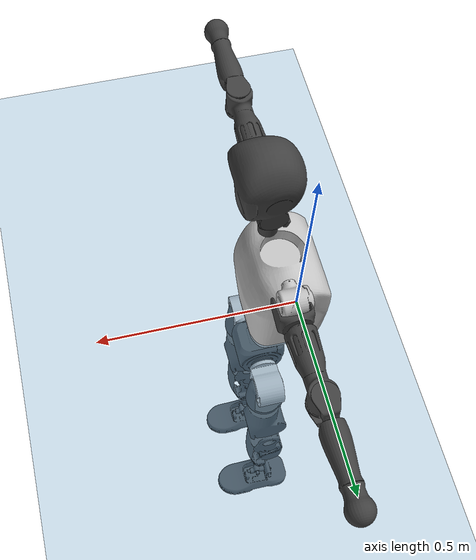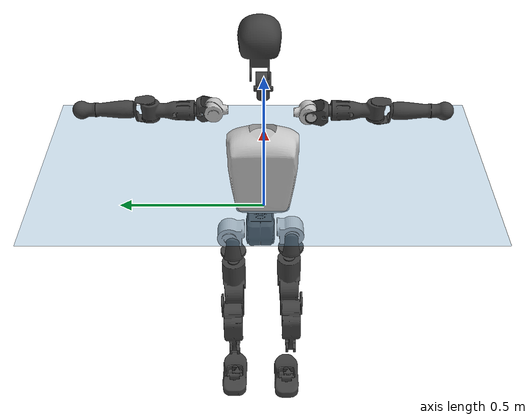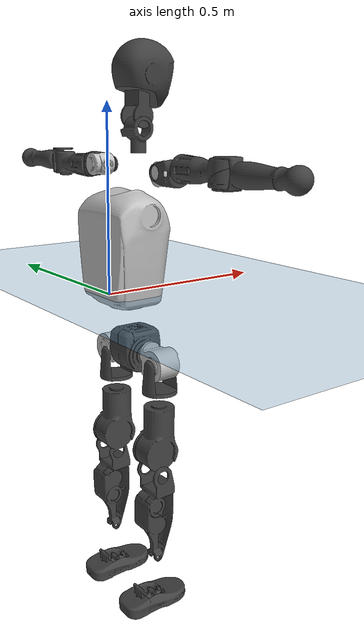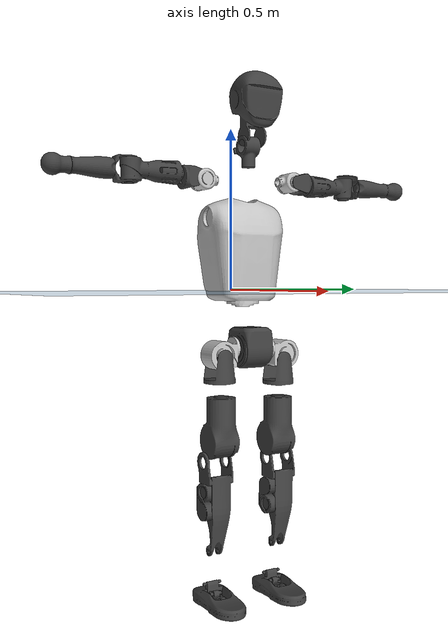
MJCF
<mujoco model="T1">
  <compiler angle="radian" assetdir="assets" balanceinertia="true" inertiafromgeom="false"/>

  <option timestep="0.005" density="1.2" viscosity="2e-05"/>

  <size nkey="1"/>

  <visual>
    <quality shadowsize="8192"/>
    <map shadowclip="0.5"/>
  </visual>

  <default>
    <default class="/">
      <joint armature="0.01" damping="0.01" frictionloss="0.1"/>
      <geom contype="0" conaffinity="0" group="1" solref="-1000 -80"/>
      <site size="0.01 0.005 0.005" group="5"/>
      <general forcelimited="true" biastype="affine" gainprm="25" biasprm="0 -25 -0.6"/>
      <default class="t1">
        <geom rgba="0.25 0.25 0.25 1"/>
        <default class="visual">
          <geom type="mesh" group="2"/>
        </default>
        <default class="collision">
          <geom group="3"/>
        </default>
        <default class="foot">
          <geom size="0.1115 0.05 0.015" type="box" condim="6" group="4" priority="1" solimp="0.015 1 0.015"/>
        </default>
        <default class="reward_collision_sphere">
          <geom group="5" rgba="1 0 0 1"/>
        </default>
      </default>
    </default>
  </default>

  <asset>
    <texture type="skybox" colorspace="auto" name="//unnamed_texture_0" builtin="gradient" rgb1="0.95 0.95 0.95" rgb2="0.95 0.95 0.95" width="100" height="600"/>
    <texture type="2d" colorspace="auto" name="texplane" builtin="checker" rgb1="0.345 0.575 0.748" rgb2="0.345 0.575 0.748" markrgb="1 1 1" width="512" height="512"/>
    <material name="MatPlane" class="/" texture="texplane" texuniform="true" texrepeat="2 2" specular="0.9"/>
    <mesh name="Trunk" class="/" file="Trunk.stl"/>
    <mesh name="H1" class="/" file="H1.stl"/>
    <mesh name="H2" class="/" file="H2.stl"/>
    <mesh name="AL1" class="/" file="AL1.stl"/>
    <mesh name="AL2" class="/" file="AL2.stl"/>
    <mesh name="AL3" class="/" file="AL3.stl"/>
    <mesh name="left_hand_link" class="/" file="left_hand_link.stl"/>
    <mesh name="AR1" class="/" file="AR1.stl"/>
    <mesh name="AR2" class="/" file="AR2.stl"/>
    <mesh name="AR3" class="/" file="AR3.stl"/>
    <mesh name="right_hand_link" class="/" file="right_hand_link.stl"/>
    <mesh name="Waist" class="/" file="Waist.stl"/>
    <mesh name="Hip_Pitch_Left" class="/" file="Hip_Pitch_Left.stl"/>
    <mesh name="Hip_Roll_Left" class="/" file="Hip_Roll_Left.stl"/>
    <mesh name="Hip_Yaw_Left" class="/" file="Hip_Yaw_Left.stl"/>
    <mesh name="Shank_Left" class="/" file="Shank_Left.stl"/>
    <mesh name="Ankle_Cross_Left" class="/" file="Ankle_Cross_Left.stl"/>
    <mesh name="left_foot_link" class="/" file="left_foot_link.stl"/>
    <mesh name="Hip_Pitch_Right" class="/" file="Hip_Pitch_Right.stl"/>
    <mesh name="Hip_Roll_Right" class="/" file="Hip_Roll_Right.stl"/>
    <mesh name="Hip_Yaw_Right" class="/" file="Hip_Yaw_Right.stl"/>
    <mesh name="Shank_Right" class="/" file="Shank_Right.stl"/>
    <mesh name="Ankle_Cross_Right" class="/" file="Ankle_Cross_Right.stl"/>
    <mesh name="right_foot_link" class="/" file="right_foot_link.stl"/>
  </asset>

  <worldbody>
    <geom name="floor" class="/" size="100 100 0.125" type="plane" group="0" material="MatPlane"/>
    <light name="toplight_shadow" class="/" pos="0 0 5" dir="0.0990148 0.0990148 -0.990148" type="directional" ambient="0.04 0.04 0.04" diffuse="0.55 0.55 0.55" specular="0.12 0.12 0.12"/>
    <light name="toplight_fill" class="/" pos="0 0 5" dir="0.0990148 0.0990148 -0.990148" type="directional" castshadow="false" ambient="0.04 0.04 0.04" diffuse="0.3 0.3 0.3" specular="0.08 0.08 0.08"/>
    <body name="trunk" childclass="t1" pos="-0.000551173 0.00409061 0.00150667" quat="0.999994 0.000646933 0.00045675 0.00333086">
      <inertial pos="0.0807152 0.00224536 0.154132" quat="0.999361 0.00992632 -0.0107311 -0.0326195" mass="27.881" diaginertia="0.463836 0.102854 0.354648"/>
      <joint name="//unnamed_joint_0" type="free" armature="0" damping="0" frictionloss="0"/>
      <geom name="//unnamed_geom_1" class="visual" rgba="0.76 0.76 0.76 1" mesh="Trunk"/>
      <geom name="//unnamed_geom_2" class="collision" size="0.100014 0.133352 0.200028" pos="0.0874101 0 0.177654" type="box"/>
      <geom name="//unnamed_geom_3" class="reward_collision_sphere" size="0.153355" pos="0.0874101 0 0.148045"/>
      <geom name="//unnamed_geom_4" class="reward_collision_sphere" size="0.0200028" pos="0.0874101 0.0903795 0"/>
      <geom name="//unnamed_geom_5" class="reward_collision_sphere" size="0.0200028" pos="0.0874101 -0.0903795 0"/>
      <geom name="//unnamed_geom_6" class="reward_collision_sphere" size="0.0200028" pos="0.0874101 0.113772 0.26648"/>
      <geom name="//unnamed_geom_7" class="reward_collision_sphere" size="0.0200028" pos="0.0874101 -0.113772 0.26648"/>
      <site name="imu" pos="-0.0324903 -0.00153847 0.0316998" size="0.0133352"/>
      <camera name="track" pos="0 -2.12658 0" quat="0.707107 0.707107 0 0" mode="trackcom"/>
      <camera name="ego_camera" pos="0.177734 0 0.621787" quat="-0.5 -0.5 0.5 0.5"/>
      <body name="H1" pos="0.0986058 -0.00151508 0.369603" quat="1 -0.00031647 0.000327376 3.14618e-05">
        <inertial pos="-0.00101038 -0.00311217 0.0848246" quat="0.768597 -0.0108089 -0.00155983 0.63964" mass="1.04262" diaginertia="0.00164804 0.000291868 0.00106351"/>
        <joint name="AAHead_yaw" pos="0 0 0" axis="-0.000535212 0.00169623 0.999998" range="-1.69932 1.6054" armature="0.00682746" damping="0.0148768" frictionloss="0.0720532"/>
        <geom name="//unnamed_geom_8" class="visual" mesh="H1"/>
        <body name="H2" pos="0.00308843 0.0118661 0.092464" quat="0.999999 0.000148705 0.00123039 0.000514943">
          <inertial pos="0.00367878 0.00937657 0.156923" quat="0.982392 0.139887 -0.0923816 -0.0824795" mass="1.46287" diaginertia="0.0137949 0.00303706 0.012708"/>
          <joint name="Head_pitch" pos="0 0 0" axis="0.0099837 -0.999949 -0.0012697" range="-1.20965 0.368844" armature="0.00975427" damping="0.054872" frictionloss="0.138412"/>
          <geom name="//unnamed_geom_9" class="visual" mesh="H2"/>
          <geom name="//unnamed_geom_10" class="collision" size="0.106682" pos="0.0145684 0 0.162849"/>
          <geom name="//unnamed_geom_11" class="reward_collision_sphere" size="0.120017" pos="0.0291367 0 0.148045"/>
        </body>
      </body>
      <body name="AL1" pos="0.0838679 0.115304 0.333961" quat="0.999987 0.00120656 -0.000127788 0.00501299">
        <inertial pos="0.00453537 0.0487803 -0.00123158" quat="0.504483 0.49596 -0.503173 0.496323" mass="1.33283" diaginertia="0.00950001 0.00209356 0.00242218"/>
        <joint name="Left_Shoulder_Pitch" pos="0 0 0" axis="-0.0263028 0.999449 0.0202266" stiffness="0.00234212" range="-3.21385 1.01342" armature="0.0131099" damping="0.0559957" frictionloss="0.104612"/>
        <geom name="//unnamed_geom_12" class="visual" rgba="0.76 0.76 0.76 1" mesh="AL1"/>
        <body name="AL2" pos="0.00919296 0.0476755 -0.00221265" quat="1 0.000286924 -0.000173504 0.000200672">
          <inertial pos="0.00881514 0.0307103 0.00388581" quat="0.486699 0.51249 -0.489249 0.510993" mass="0.34903" diaginertia="0.0025131 0.000436984 0.00124017"/>
          <joint name="Left_Shoulder_Roll" pos="0 0 0" axis="-0.999996 0.00282641 0.000628826" stiffness="0.0582335" range="-1.65041 1.7646" armature="0.00648436" damping="0.0196844" frictionloss="0.132956"/>
          <geom name="//unnamed_geom_13" class="visual" mesh="AL2"/>
          <body name="AL3" pos="-0.00184176 0.0636344 -0.0045903" quat="1 -0.000247833 -3.15701e-05 8.322e-05">
            <inertial pos="-0.00875026 0.100507 -0.00285314" quat="0.690233 0.723563 0.00468588 0.00353534" mass="2.95168" diaginertia="0.0828478 0.019343 0.00524042"/>
            <joint name="Left_Elbow_Pitch" pos="0 0 0" axis="0.0172023 -0.999827 -0.00705651" stiffness="0.0136988" range="-2.05893 2.32567" armature="0.00561673" damping="0.0154343" frictionloss="0.121234"/>
            <geom name="//unnamed_geom_14" class="visual" mesh="AL3"/>
            <geom name="//unnamed_geom_15" class="collision" size="0.0400057 0.100014" pos="0 0.0531644 0" quat="0.707105 0.707108 0 0" type="cylinder"/>
            <geom name="//unnamed_geom_16" class="reward_collision_sphere" size="0.0480068"/>
            <body name="left_hand_link" pos="0.000773181 0.156618 0.00569534" quat="0.999987 -0.00415669 0.00110451 0.00280294">
              <inertial pos="0.0105233 0.113517 -0.000165265" quat="0.708155 0.706045 -0.00355535 -0.00202944" mass="0.758971" diaginertia="0.0593607 0.0106182 0.00135398"/>
              <joint name="Left_Elbow_Yaw" pos="0 0 0" axis="0.00171381 0.00309073 0.999994" range="-2.4625 0.215836" armature="0.0128467" damping="0" frictionloss="0.144752"/>
              <geom name="//unnamed_geom_17" class="visual" mesh="left_hand_link"/>
              <geom name="//unnamed_geom_18" class="collision" size="0.0400057 0.116683" pos="0 0.138227 0" quat="0.707105 0.707108 0 0" type="cylinder"/>
              <geom name="//unnamed_geom_19" class="reward_collision_sphere" size="0.0666762"/>
              <geom name="//unnamed_geom_20" class="reward_collision_sphere" size="0.0466733" pos="0 0.116962 0"/>
              <geom name="//unnamed_geom_21" class="reward_collision_sphere" size="0.0466733" pos="0 0.228607 0"/>
            </body>
          </body>
        </body>
      </body>
      <body name="AR1" pos="0.0811896 -0.103715 0.325038" quat="0.999999 0.000347323 0.001312 -0.00098907">
        <inertial pos="0.00452401 -0.0361889 0.000855507" quat="0.505459 0.514067 -0.485676 0.494333" mass="1.35707" diaginertia="0.0103658 0.00189991 0.00221516"/>
        <joint name="Right_Shoulder_Pitch" pos="0 0 0" axis="-0.0155131 -0.999118 0.0390208" stiffness="0.0568497" range="-1.20087 3.39625" armature="0.00765875" damping="0.0194785" frictionloss="0.158215"/>
        <geom name="//unnamed_geom_22" class="visual" rgba="0.76 0.76 0.76 1" mesh="AR1"/>
        <body name="AR2" pos="-0.0107694 -0.0556274 0.00495191" quat="0.999989 0.00204045 -0.00409696 -0.000691525">
          <inertial pos="0.0112657 -0.0381769 0.0024683" quat="0.507642 0.476255 -0.517574 0.497592" mass="0.421315" diaginertia="0.0026041 0.000412487 0.00125745"/>
          <joint name="Right_Shoulder_Roll" pos="0 0 0" axis="-0.999989 -0.00166067 0.00432582" range="-1.78768 1.53115" armature="0.0145263" damping="0" frictionloss="0.0555399"/>
          <geom name="//unnamed_geom_23" class="visual" mesh="AR2"/>
          <body name="AR3" pos="-0.00511339 -0.0666207 0.0119272" quat="1 4.91329e-05 -3.2384e-05 3.51367e-05">
            <inertial pos="0.00183162 -0.0813992 0.00310262" quat="0.720028 0.69286 0.022633 0.0314917" mass="2.46613" diaginertia="0.0863027 0.0178103 0.00399801"/>
            <joint name="Right_Elbow_Pitch" pos="0 0 0" axis="0.0438837 0.999032 0.00292034" range="-2.09403 2.36941" armature="0.0200164" damping="0.013902" frictionloss="0.0951579"/>
            <geom name="//unnamed_geom_24" class="visual" mesh="AR3"/>
            <geom name="//unnamed_geom_25" class="collision" size="0.0400057 0.100014" pos="0 -0.0531644 0" quat="0.707105 0.707108 0 0" type="cylinder"/>
            <geom name="//unnamed_geom_26" class="reward_collision_sphere" size="0.0480068"/>
            <body name="right_hand_link" pos="0.000427093 -0.157261 -0.00117797" quat="0.999992 -0.00199854 -0.00249718 -0.00223451">
              <inertial pos="0.00164324 -0.112819 -0.00860465" quat="0.705189 0.709018 -0.000271578 -0.00113109" mass="0.810631" diaginertia="0.0553189 0.011797 0.00160928"/>
              <joint name="Right_Elbow_Yaw" pos="0 0 0" axis="0.0206131 -0.0176201 0.999632" range="-0.0296401 2.32358" armature="0.00709928" damping="0.0650597" frictionloss="0.0885377"/>
              <geom name="//unnamed_geom_27" class="visual" mesh="right_hand_link"/>
              <geom name="//unnamed_geom_28" class="collision" size="0.0400057 0.116683" pos="0 -0.138227 0" quat="0.707105 0.707108 0 0" type="cylinder"/>
              <geom name="//unnamed_geom_29" class="reward_collision_sphere" size="0.0666762"/>
              <geom name="//unnamed_geom_30" class="reward_collision_sphere" size="0.0466733" pos="0 -0.116962 0"/>
              <geom name="//unnamed_geom_31" class="reward_collision_sphere" size="0.0466733" pos="0 -0.228607 0"/>
            </body>
          </body>
        </body>
      </body>
      <body name="Waist" pos="0.094517 0.00796569 -0.18167" quat="1 -8.46371e-05 -3.08005e-05 -0.000282127">
        <inertial pos="0.0125024 0.000285775 0.0111991" quat="0.987899 -0.0232157 -0.151909 -0.0209835" mass="6.96085" diaginertia="0.0405901 0.00809243 0.0379948"/>
        <joint name="Waist" pos="0 0 0" axis="0.0259767 -0.0360176 0.999013" stiffness="0.0227359" range="-1.57209 1.75315" armature="0.0146011" damping="0" frictionloss="0.0764057"/>
        <geom name="//unnamed_geom_32" class="visual" mesh="Waist"/>
        <body name="Hip_Pitch_Left" pos="0.0019615 0.114784 0.000436464" quat="0.999998 9.33812e-05 -0.00194438 0.000512307">
          <inertial pos="0.000316675 -0.00414896 -0.0283158" quat="0.975263 0.220666 0.0129507 -0.000107522" mass="2.35511" diaginertia="0.0118164 0.00177757 0.00870457"/>
          <joint name="Left_Hip_Pitch" pos="0 0 0" axis="-0.0256083 0.998225 0.0537716" stiffness="0.0516706" range="-1.78568 1.36226" armature="0.0106349" damping="0.0483063" frictionloss="0.121659"/>
          <geom name="//unnamed_geom_33" class="visual" rgba="0.76 0.76 0.76 1" mesh="Hip_Pitch_Left"/>
          <body name="Hip_Roll_Left" pos="0.00175466 -0.0120052 -0.0378622" quat="0.999983 -0.00525797 -0.00183435 -0.00149119">
            <inertial pos="0.00927475 0.001616 -0.0795347" quat="0.711347 -0.0114226 -0.0093827 0.702685" mass="1.04108" diaginertia="0.0114883 0.00239226 0.00414514"/>
            <joint name="Left_Hip_Roll" pos="0 0 0" axis="-0.998669 0.0459846 0.0233456" range="-1.62945 0.161228" armature="0.0158712" damping="0" frictionloss="0.133714"/>
            <geom name="//unnamed_geom_34" class="visual" mesh="Hip_Roll_Left"/>
            <geom name="//unnamed_geom_35" class="reward_collision_sphere" size="0.0733438"/>
            <body name="Hip_Yaw_Left" pos="-0.00268905 0.000606757 -0.118143" quat="1 -9.69031e-05 -3.81311e-05 7.26453e-05">
              <inertial pos="-0.00919451 -0.00102684 -0.13277" quat="0.711268 0.00935319 -0.0487031 0.701169" mass="5.96053" diaginertia="0.170432 0.0381418 0.0206277"/>
              <joint name="Left_Hip_Yaw" pos="0 0 0" axis="-0.00859988 0.000746501 -0.999963" range="-0.867977 1.03866" armature="0.0134559" damping="0" frictionloss="0.141713"/>
              <geom name="//unnamed_geom_36" class="visual" mesh="Hip_Yaw_Left"/>
              <geom name="//unnamed_geom_37" class="collision" size="0.0666762 0.106682" type="cylinder"/>
              <body name="Shank_Left" pos="-0.0182298 0.00923163 -0.195743" quat="0.999999 -0.000865187 -0.000508886 -0.00023671">
                <inertial pos="-0.00606915 0.00745993 -0.185545" quat="0.995648 0.0136685 0.00264667 0.0921443" mass="3.6179" diaginertia="0.212213 0.0429693 0.0138454"/>
                <joint name="Left_Knee_Pitch" pos="0 0 0" axis="0.00929241 0.999929 -0.00744572" range="-0.0504608 2.42079" armature="0.0076417" damping="0.0396204" frictionloss="0.138293"/>
                <geom name="//unnamed_geom_38" class="visual" mesh="Shank_Left"/>
                <geom name="//unnamed_geom_39" class="collision" size="0.0666762 0.100014" pos="0 0 -0.177654" type="cylinder"/>
                <geom name="//unnamed_geom_40" class="reward_collision_sphere" size="0.086679"/>
                <body name="Ankle_Cross_Left" pos="0.000197438 -0.00654158 -0.406522" quat="0.999989 -0.000184322 -0.00456842 -0.000559684">
                  <inertial pos="-0.00171365 0.010946 -0.0125161" quat="0.459253 0.560018 0.551906 0.41336" mass="0.168973" diaginertia="0.000182211 3.05174e-05 7.26303e-05"/>
                  <joint name="Left_Ankle_Pitch" pos="0 0 0" axis="0.023323 0.999599 -0.0160564" stiffness="0.00181422" range="-0.87679 0.315636" armature="0.014583" damping="0" frictionloss="0.141858"/>
                  <geom name="//unnamed_geom_41" class="visual" mesh="Ankle_Cross_Left"/>
                  <body name="left_foot_link" pos="0.00806438 0.0106393 -0.0156176" quat="0.999999 -0.00033691 -0.000715799 -0.000614121">
                    <inertial pos="-0.00914566 -0.00166285 -0.024868" quat="0.00384122 0.621802 0.000223679 0.783165" mass="1.66594" diaginertia="0.0179387 0.00327928 0.0161963"/>
                    <joint name="Left_Ankle_Roll" pos="0 0 0" axis="-0.999964 0.00827012 -0.00172229" range="-0.479629 0.435123" armature="0.0197719" damping="0.0316152" frictionloss="0.122062"/>
                    <geom name="//unnamed_geom_42" class="visual" mesh="left_foot_link"/>
                    <geom name="left_foot" class="foot" size="0.110643 0.085601 0.0194151" pos="0.0145684 0 -0.0222067"/>
                    <geom name="//unnamed_geom_44" class="reward_collision_sphere" size="0.0693432" pos="0.0145684 0 -0.0222067"/>
                    <geom name="//unnamed_geom_45" class="reward_collision_sphere" size="0.0400057" pos="0.138399 -0.0244556 -0.0222067"/>
                    <geom name="//unnamed_geom_46" class="reward_collision_sphere" size="0.0400057" pos="-0.101978 -0.0244556 -0.0222067"/>
                    <site name="left_foot" class="foot" pos="0.0145684 0 -0.0222067" size="0.0133352"/>
                  </body>
                </body>
              </body>
            </body>
          </body>
        </body>
        <body name="Hip_Pitch_Right" pos="0.00741906 -0.116591 0.00572899" quat="0.999984 -0.00308519 -0.00333895 0.0033481">
          <inertial pos="0.000650842 0.020054 -0.0264777" quat="0.972401 -0.232969 -0.00439163 0.0119459" mass="2.53597" diaginertia="0.0132636 0.00227947 0.0102248"/>
          <joint name="Right_Hip_Pitch" pos="0 0 0" axis="0.000596534 -1 0.000272786" stiffness="0.00941773" range="-1.43533 1.80446" armature="0.0159113" damping="0.0204202" frictionloss="0.0631314"/>
          <geom name="//unnamed_geom_47" class="visual" rgba="0.76 0.76 0.76 1" mesh="Hip_Pitch_Right"/>
          <body name="Hip_Roll_Right" pos="4.35752e-05 0.0025291 -0.0270172" quat="1 -0.000138508 0.000790789 0.000536185">
            <inertial pos="0.0110681 -0.0113181 -0.0688185" quat="0.703831 -0.0220653 -0.00771981 0.709983" mass="0.867317" diaginertia="0.0106562 0.00201948 0.00359617"/>
            <joint name="Right_Hip_Roll" pos="0 0 0" axis="-0.999998 0.000797863 0.00159353" range="-0.21788 1.54819" armature="0.01095" damping="0.0101743" frictionloss="0.139027"/>
            <geom name="//unnamed_geom_48" class="visual" mesh="Hip_Roll_Right"/>
            <geom name="//unnamed_geom_49" class="reward_collision_sphere" size="0.0733438"/>
            <body name="Hip_Yaw_Right" pos="-0.000544704 0.00572463 -0.121809" quat="0.999998 0.000562891 0.0013944 0.000951946">
              <inertial pos="-0.0159676 0.00566897 -0.132661" quat="0.713828 -0.0334202 -0.0327923 0.698754" mass="5.33063" diaginertia="0.157649 0.0348004 0.0178673"/>
              <joint name="Right_Hip_Yaw" pos="0 0 0" axis="-0.00013181 1.85682e-05 -1" range="-1.00941 1.16417" armature="0.0210916" damping="0" frictionloss="0.0677361"/>
              <geom name="//unnamed_geom_50" class="visual" mesh="Hip_Yaw_Right"/>
              <geom name="//unnamed_geom_51" class="collision" size="0.0666762 0.106682" type="cylinder"/>
              <body name="Shank_Right" pos="-0.0227053 -0.0101745 -0.198964" quat="0.999989 -0.00346952 -0.00245157 -0.00182553">
                <inertial pos="-0.00756361 -0.00742906 -0.192156" quat="0.998383 -0.0295557 -0.0393977 -0.0283934" mass="4.66231" diaginertia="0.246427 0.0468095 0.0119626"/>
                <joint name="Right_Knee_Pitch" pos="0 0 0" axis="-0.0403 -0.999077 0.0148736" range="-2.50614 0.158183" armature="0.0131948" damping="0" frictionloss="0.1502"/>
                <geom name="//unnamed_geom_52" class="visual" mesh="Shank_Right"/>
                <geom name="//unnamed_geom_53" class="collision" size="0.0666762 0.100014" pos="0 0 -0.177654" type="cylinder"/>
                <geom name="//unnamed_geom_54" class="reward_collision_sphere" size="0.086679"/>
                <body name="Ankle_Cross_Right" pos="-0.00435701 0.00830187 -0.416997" quat="0.999982 -0.000158558 0.00180045 -0.00573214">
                  <inertial pos="-0.0029878 0.00226837 -0.0190691" quat="0.42322 0.559575 0.554896 0.447047" mass="0.177543" diaginertia="0.000188703 3.48681e-05 8.92364e-05"/>
                  <joint name="Right_Ankle_Pitch" pos="0 0 0" axis="0.00774543 -0.999942 0.00751546" range="-0.185028 0.890992" armature="0.0144219" damping="0.000105659" frictionloss="0.129108"/>
                  <geom name="//unnamed_geom_55" class="visual" mesh="Ankle_Cross_Right"/>
                  <body name="right_foot_link" pos="0.00179856 0.00883253 -0.0139513" quat="1 0.000155643 0.000105902 -8.29823e-05">
                    <inertial pos="-0.00215282 -0.0021036 -0.00549236" quat="-0.0025092 0.618572 0.00149383 0.785723" mass="1.65726" diaginertia="0.0179267 0.00321189 0.0166778"/>
                    <joint name="Right_Ankle_Roll" pos="0 0 0" axis="-0.999484 0.0130793 0.0293274" stiffness="0.0269666" range="-0.679869 0.432836" armature="0.00748171" damping="0.0107619" frictionloss="0.176363"/>
                    <geom name="//unnamed_geom_56" class="visual" mesh="right_foot_link"/>
                    <geom name="right_foot" class="foot" size="0.129432 0.0836875 0.0188364" pos="0.0145684 0 -0.0222067"/>
                    <geom name="//unnamed_geom_58" class="reward_collision_sphere" size="0.0533409"/>
                    <geom name="//unnamed_geom_59" class="reward_collision_sphere" size="0.0400057" pos="0.0145684 0 -0.0222067"/>
                    <geom name="//unnamed_geom_60" class="reward_collision_sphere" size="0.0400057" pos="0.138399 0.0244556 -0.0222067"/>
                    <geom name="//unnamed_geom_61" class="reward_collision_sphere" size="0.0400057" pos="-0.101978 0.0244556 -0.0222067"/>
                    <site name="right_foot" class="foot" pos="0.0145684 0 -0.0222067" size="0.0133352"/>
                  </body>
                </body>
              </body>
            </body>
          </body>
        </body>
      </body>
    </body>
  </worldbody>

  <contact>
    <pair class="/" geom1="floor" geom2="left_foot" name="//unnamed_contact_0"/>
    <pair class="/" geom1="floor" geom2="right_foot" name="//unnamed_contact_1"/>
  </contact>

  <actuator>
    <general name="AAHead_yaw" class="/" joint="AAHead_yaw" forcerange="-11.1004 11.1004" gainprm="37.2777" biasprm="0 -37.2777 -0.841237"/>
    <general name="Head_pitch" class="/" joint="Head_pitch" forcerange="-7.17284 7.17284" gainprm="37.2777" biasprm="0 -37.2777 -0.841237"/>
    <general name="Left_Shoulder_Pitch" class="/" joint="Left_Shoulder_Pitch" forcerange="-23.3641 23.3641" gainprm="37.2777" biasprm="0 -37.2777 -0.841237"/>
    <general name="Left_Shoulder_Roll" class="/" joint="Left_Shoulder_Roll" forcerange="-16.2131 16.2131" gainprm="37.2777" biasprm="0 -37.2777 -0.841237"/>
    <general name="Left_Elbow_Pitch" class="/" joint="Left_Elbow_Pitch" forcerange="-23.2838 23.2838" gainprm="37.2777" biasprm="0 -37.2777 -0.841237"/>
    <general name="Left_Elbow_Yaw" class="/" joint="Left_Elbow_Yaw" forcerange="-26.6849 26.6849" gainprm="37.2777" biasprm="0 -37.2777 -0.841237"/>
    <general name="Right_Shoulder_Pitch" class="/" joint="Right_Shoulder_Pitch" forcerange="-24.945 24.945" gainprm="37.2777" biasprm="0 -37.2777 -0.841237"/>
    <general name="Right_Shoulder_Roll" class="/" joint="Right_Shoulder_Roll" forcerange="-26.0988 26.0988" gainprm="37.2777" biasprm="0 -37.2777 -0.841237"/>
    <general name="Right_Elbow_Pitch" class="/" joint="Right_Elbow_Pitch" forcerange="-23.9214 23.9214" gainprm="37.2777" biasprm="0 -37.2777 -0.841237"/>
    <general name="Right_Elbow_Yaw" class="/" joint="Right_Elbow_Yaw" forcerange="-24.2719 24.2719" gainprm="37.2777" biasprm="0 -37.2777 -0.841237"/>
    <general name="Waist" class="/" joint="Waist" forcerange="-53.136 53.136" gainprm="37.2777" biasprm="0 -37.2777 -0.841237"/>
    <general name="Left_Hip_Pitch" class="/" joint="Left_Hip_Pitch" forcerange="-64.2282 64.2282" gainprm="37.2777" biasprm="0 -37.2777 -0.841237"/>
    <general name="Left_Hip_Roll" class="/" joint="Left_Hip_Roll" forcerange="-37.3189 37.3189" gainprm="37.2777" biasprm="0 -37.2777 -0.841237"/>
    <general name="Left_Hip_Yaw" class="/" joint="Left_Hip_Yaw" forcerange="-40.3521 40.3521" gainprm="37.2777" biasprm="0 -37.2777 -0.841237"/>
    <general name="Left_Knee_Pitch" class="/" joint="Left_Knee_Pitch" forcerange="-103.554 103.554" gainprm="37.2777" biasprm="0 -37.2777 -0.841237"/>
    <general name="Left_Ankle_Pitch" class="/" joint="Left_Ankle_Pitch" forcerange="-15.5415 15.5415" gainprm="37.2777" biasprm="0 -37.2777 -0.841237"/>
    <general name="Left_Ankle_Roll" class="/" joint="Left_Ankle_Roll" forcerange="-28.9306 28.9306" gainprm="37.2777" biasprm="0 -37.2777 -0.841237"/>
    <general name="Right_Hip_Pitch" class="/" joint="Right_Hip_Pitch" forcerange="-61.5409 61.5409" gainprm="37.2777" biasprm="0 -37.2777 -0.841237"/>
    <general name="Right_Hip_Roll" class="/" joint="Right_Hip_Roll" forcerange="-51.9201 51.9201" gainprm="37.2777" biasprm="0 -37.2777 -0.841237"/>
    <general name="Right_Hip_Yaw" class="/" joint="Right_Hip_Yaw" forcerange="-25.2724 25.2724" gainprm="37.2777" biasprm="0 -37.2777 -0.841237"/>
    <general name="Right_Knee_Pitch" class="/" joint="Right_Knee_Pitch" forcerange="-76.6358 76.6358" gainprm="37.2777" biasprm="0 -37.2777 -0.841237"/>
    <general name="Right_Ankle_Pitch" class="/" joint="Right_Ankle_Pitch" forcerange="-25.9174 25.9174" gainprm="37.2777" biasprm="0 -37.2777 -0.841237"/>
    <general name="Right_Ankle_Roll" class="/" joint="Right_Ankle_Roll" forcerange="-19.0582 19.0582" gainprm="37.2777" biasprm="0 -37.2777 -0.841237"/>
  </actuator>

  <sensor>
    <gyro site="imu" name="imu_angular_velocity"/>
    <velocimeter site="imu" name="imu_linear_velocity"/>
    <framelinvel objtype="site" objname="left_foot" name="left_foot_global_linear_velocity"/>
    <framelinvel objtype="site" objname="right_foot" name="right_foot_global_linear_velocity"/>
  </sensor>

  <keyframe>
    <key name="home" qpos="0 0 0.6385 1 0 0 0 0 0 0 1.4 0 -0.4 0 -1.4 0 0.4 0 -0.4 0 0 0.8 -0.4 0 0.4 0 0 -0.8 0.4 0"/>
  </keyframe>
</mujoco>
